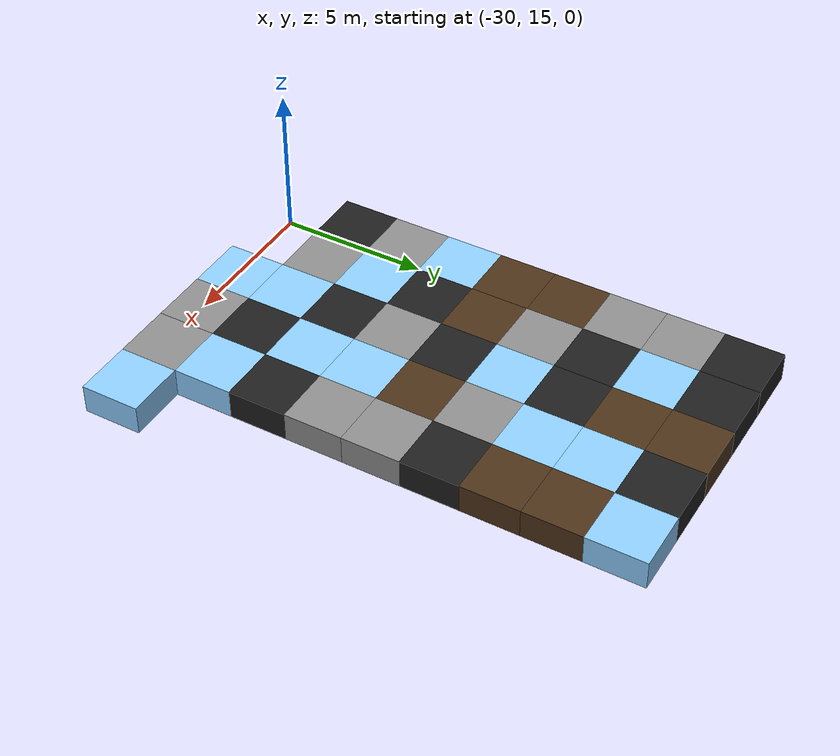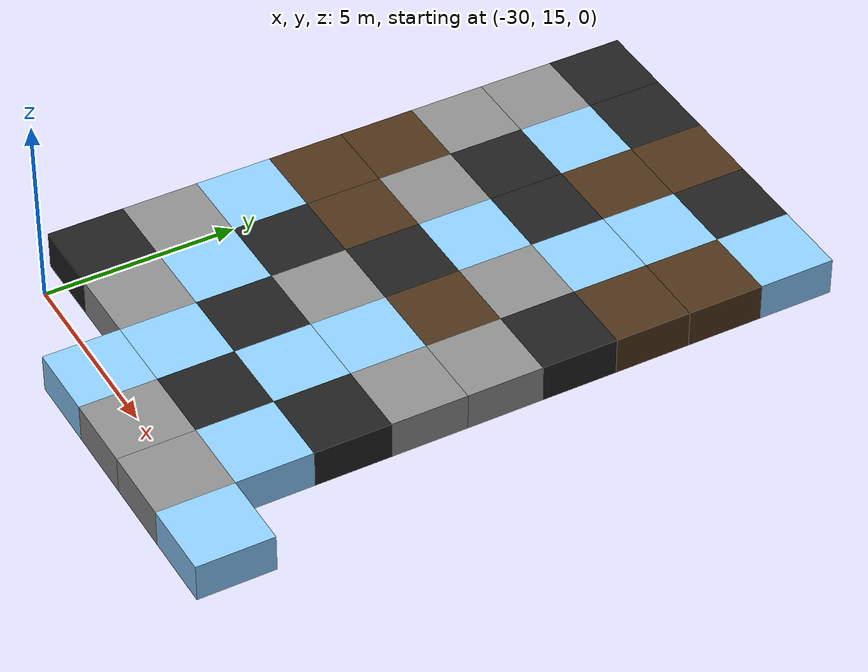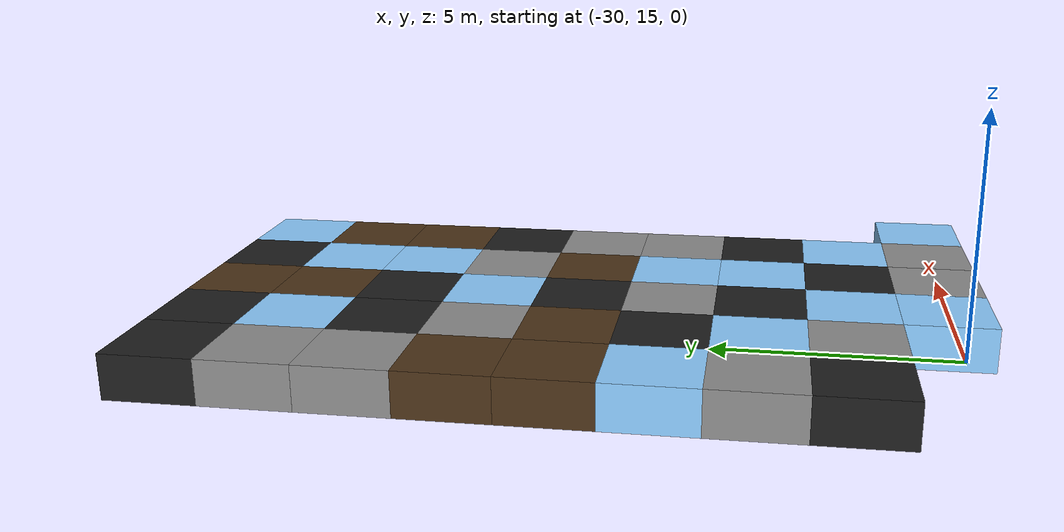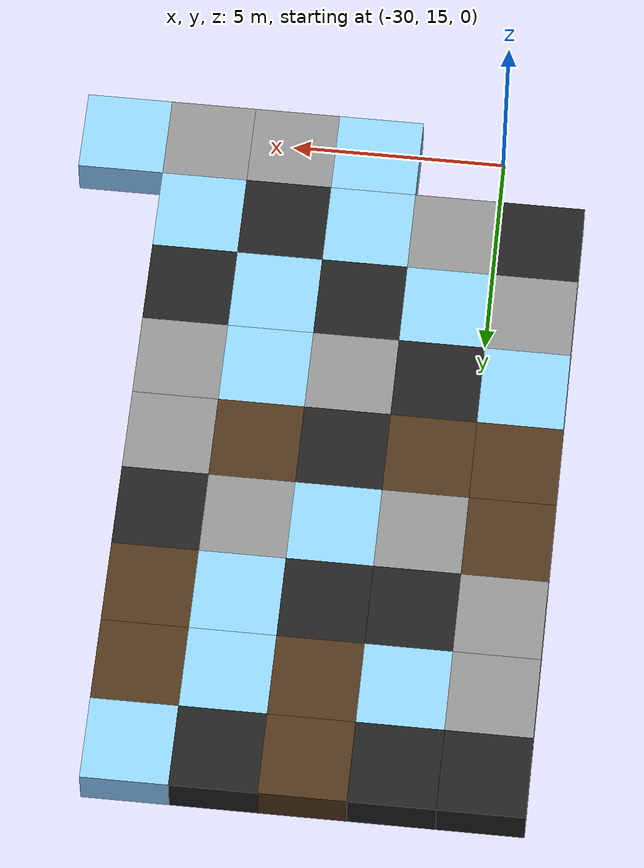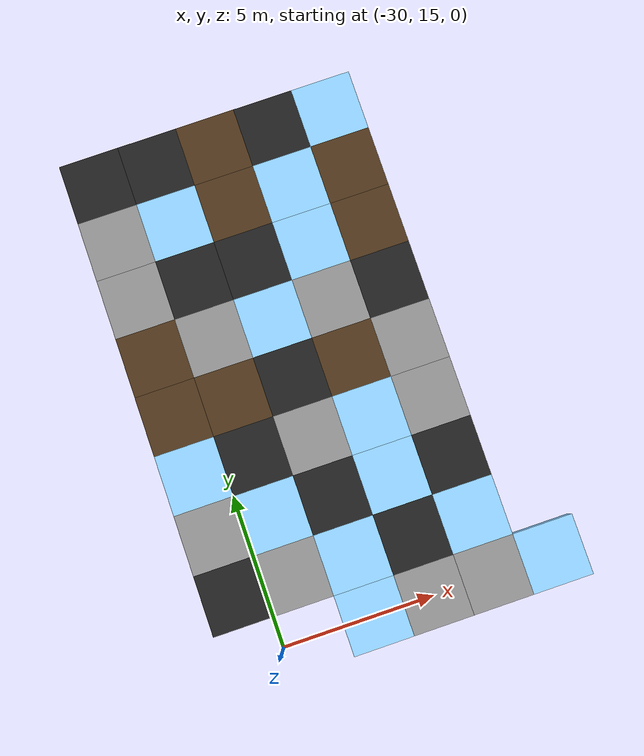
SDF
<sdf version="1.5">
 <world name="squares_example">
  <model name="tile_2_23">
   <static>true</static>
   <pose>-27.000 15.000 -0.500 0 0 0</pose>
   <link name="link">
    <collision name="col">
     <geometry><box><size>2.0 2.0 1.0</size></box></geometry>
     <surface>
      <friction>
       <ode><mu>0.03</mu><mu2>0.02</mu2><fdir1>1 0 0</fdir1><slip1>0.03</slip1><slip2>0.03</slip2></ode>
       <torsional>
        <coefficient>0.005</coefficient>
        <use_patch_radius>false</use_patch_radius>
        <surface_radius>0.12</surface_radius>
        <ode><slip>0.01</slip></ode>
       </torsional>
      </friction>
      <bounce><restitution_coefficient>0.0</restitution_coefficient><threshold>0.1</threshold></bounce>
      <contact>
       <ode><kp>10000000.0</kp><kd>1000.0</kd><max_vel>0.01</max_vel><min_depth>0.0</min_depth></ode>
      </contact>
     </surface>
    </collision>
    <visual name="visual">
     <geometry><box><size>2.0 2.0 1.0</size></box></geometry>
     <material>
      <diffuse>0.55 0.80 1.00 1</diffuse>
      <ambient>0 0 0 0</ambient>
      <specular>0 0 0 1</specular>
      <emissive>0 0 0 1</emissive>
     </material>
    </visual>
   </link>
  </model>
  <model name="tile_3_23">
   <static>true</static>
   <pose>-25.000 15.000 -0.500 0 0 0</pose>
   <link name="link">
    <collision name="col">
     <geometry><box><size>2.0 2.0 1.0</size></box></geometry>
     <surface>
      <friction>
       <ode><mu>0.8</mu><mu2>0.3</mu2><fdir1>1 0 0</fdir1><slip1>0.0</slip1><slip2>0.0</slip2></ode>
       <torsional>
        <coefficient>0.03</coefficient>
        <use_patch_radius>false</use_patch_radius>
        <surface_radius>0.12</surface_radius>
        <ode><slip>0.0</slip></ode>
       </torsional>
      </friction>
      <bounce><restitution_coefficient>0.0</restitution_coefficient><threshold>0.1</threshold></bounce>
      <contact>
       <ode><kp>10000000000.0</kp><kd>10000000.0</kd><max_vel>0.01</max_vel><min_depth>0.0</min_depth></ode>
      </contact>
     </surface>
    </collision>
    <visual name="visual">
     <geometry><box><size>2.0 2.0 1.0</size></box></geometry>
     <material>
      <diffuse>0.55 0.55 0.55 1</diffuse>
      <ambient>0 0 0 0</ambient>
      <specular>0 0 0 1</specular>
      <emissive>0 0 0 1</emissive>
     </material>
    </visual>
   </link>
  </model>
  <model name="tile_4_23">
   <static>true</static>
   <pose>-23.000 15.000 -0.500 0 0 0</pose>
   <link name="link">
    <collision name="col">
     <geometry><box><size>2.0 2.0 1.0</size></box></geometry>
     <surface>
      <friction>
       <ode><mu>0.8</mu><mu2>0.3</mu2><fdir1>1 0 0</fdir1><slip1>0.0</slip1><slip2>0.0</slip2></ode>
       <torsional>
        <coefficient>0.03</coefficient>
        <use_patch_radius>false</use_patch_radius>
        <surface_radius>0.12</surface_radius>
        <ode><slip>0.0</slip></ode>
       </torsional>
      </friction>
      <bounce><restitution_coefficient>0.0</restitution_coefficient><threshold>0.1</threshold></bounce>
      <contact>
       <ode><kp>10000000000.0</kp><kd>10000000.0</kd><max_vel>0.01</max_vel><min_depth>0.0</min_depth></ode>
      </contact>
     </surface>
    </collision>
    <visual name="visual">
     <geometry><box><size>2.0 2.0 1.0</size></box></geometry>
     <material>
      <diffuse>0.55 0.55 0.55 1</diffuse>
      <ambient>0 0 0 0</ambient>
      <specular>0 0 0 1</specular>
      <emissive>0 0 0 1</emissive>
     </material>
    </visual>
   </link>
  </model>
  <model name="tile_5_23">
   <static>true</static>
   <pose>-21.000 15.000 -0.500 0 0 0</pose>
   <link name="link">
    <collision name="col">
     <geometry><box><size>2.0 2.0 1.0</size></box></geometry>
     <surface>
      <friction>
       <ode><mu>0.03</mu><mu2>0.02</mu2><fdir1>1 0 0</fdir1><slip1>0.03</slip1><slip2>0.03</slip2></ode>
       <torsional>
        <coefficient>0.005</coefficient>
        <use_patch_radius>false</use_patch_radius>
        <surface_radius>0.12</surface_radius>
        <ode><slip>0.01</slip></ode>
       </torsional>
      </friction>
      <bounce><restitution_coefficient>0.0</restitution_coefficient><threshold>0.1</threshold></bounce>
      <contact>
       <ode><kp>10000000.0</kp><kd>1000.0</kd><max_vel>0.01</max_vel><min_depth>0.0</min_depth></ode>
      </contact>
     </surface>
    </collision>
    <visual name="visual">
     <geometry><box><size>2.0 2.0 1.0</size></box></geometry>
     <material>
      <diffuse>0.55 0.80 1.00 1</diffuse>
      <ambient>0 0 0 0</ambient>
      <specular>0 0 0 1</specular>
      <emissive>0 0 0 1</emissive>
     </material>
    </visual>
   </link>
  </model>
  <model name="tile_0_24">
   <static>true</static>
   <pose>-31.000 17.000 -0.500 0 0 0</pose>
   <link name="link">
    <collision name="col">
     <geometry><box><size>2.0 2.0 1.0</size></box></geometry>
     <surface>
      <friction>
       <ode><mu>0.4</mu><mu2>0.15</mu2><fdir1>1 0 0</fdir1><slip1>0.0</slip1><slip2>0.0</slip2></ode>
       <torsional>
        <coefficient>0.03</coefficient>
        <use_patch_radius>false</use_patch_radius>
        <surface_radius>0.12</surface_radius>
        <ode><slip>0.0</slip></ode>
       </torsional>
      </friction>
      <bounce><restitution_coefficient>0.0</restitution_coefficient><threshold>0.1</threshold></bounce>
      <contact>
       <ode><kp>1000000000.0</kp><kd>1000000.0</kd><max_vel>0.01</max_vel><min_depth>0.0</min_depth></ode>
      </contact>
     </surface>
    </collision>
    <visual name="visual">
     <geometry><box><size>2.0 2.0 1.0</size></box></geometry>
     <material>
      <diffuse>0.12 0.12 0.12 1</diffuse>
      <ambient>0 0 0 0</ambient>
      <specular>0 0 0 1</specular>
      <emissive>0 0 0 1</emissive>
     </material>
    </visual>
   </link>
  </model>
  <model name="tile_1_24">
   <static>true</static>
   <pose>-29.000 17.000 -0.500 0 0 0</pose>
   <link name="link">
    <collision name="col">
     <geometry><box><size>2.0 2.0 1.0</size></box></geometry>
     <surface>
      <friction>
       <ode><mu>0.8</mu><mu2>0.3</mu2><fdir1>1 0 0</fdir1><slip1>0.0</slip1><slip2>0.0</slip2></ode>
       <torsional>
        <coefficient>0.03</coefficient>
        <use_patch_radius>false</use_patch_radius>
        <surface_radius>0.12</surface_radius>
        <ode><slip>0.0</slip></ode>
       </torsional>
      </friction>
      <bounce><restitution_coefficient>0.0</restitution_coefficient><threshold>0.1</threshold></bounce>
      <contact>
       <ode><kp>10000000000.0</kp><kd>10000000.0</kd><max_vel>0.01</max_vel><min_depth>0.0</min_depth></ode>
      </contact>
     </surface>
    </collision>
    <visual name="visual">
     <geometry><box><size>2.0 2.0 1.0</size></box></geometry>
     <material>
      <diffuse>0.55 0.55 0.55 1</diffuse>
      <ambient>0 0 0 0</ambient>
      <specular>0 0 0 1</specular>
      <emissive>0 0 0 1</emissive>
     </material>
    </visual>
   </link>
  </model>
  <model name="tile_2_24">
   <static>true</static>
   <pose>-27.000 17.000 -0.500 0 0 0</pose>
   <link name="link">
    <collision name="col">
     <geometry><box><size>2.0 2.0 1.0</size></box></geometry>
     <surface>
      <friction>
       <ode><mu>0.03</mu><mu2>0.02</mu2><fdir1>1 0 0</fdir1><slip1>0.03</slip1><slip2>0.03</slip2></ode>
       <torsional>
        <coefficient>0.005</coefficient>
        <use_patch_radius>false</use_patch_radius>
        <surface_radius>0.12</surface_radius>
        <ode><slip>0.01</slip></ode>
       </torsional>
      </friction>
      <bounce><restitution_coefficient>0.0</restitution_coefficient><threshold>0.1</threshold></bounce>
      <contact>
       <ode><kp>10000000.0</kp><kd>1000.0</kd><max_vel>0.01</max_vel><min_depth>0.0</min_depth></ode>
      </contact>
     </surface>
    </collision>
    <visual name="visual">
     <geometry><box><size>2.0 2.0 1.0</size></box></geometry>
     <material>
      <diffuse>0.55 0.80 1.00 1</diffuse>
      <ambient>0 0 0 0</ambient>
      <specular>0 0 0 1</specular>
      <emissive>0 0 0 1</emissive>
     </material>
    </visual>
   </link>
  </model>
  <model name="tile_3_24">
   <static>true</static>
   <pose>-25.000 17.000 -0.500 0 0 0</pose>
   <link name="link">
    <collision name="col">
     <geometry><box><size>2.0 2.0 1.0</size></box></geometry>
     <surface>
      <friction>
       <ode><mu>0.4</mu><mu2>0.15</mu2><fdir1>1 0 0</fdir1><slip1>0.0</slip1><slip2>0.0</slip2></ode>
       <torsional>
        <coefficient>0.03</coefficient>
        <use_patch_radius>false</use_patch_radius>
        <surface_radius>0.12</surface_radius>
        <ode><slip>0.0</slip></ode>
       </torsional>
      </friction>
      <bounce><restitution_coefficient>0.0</restitution_coefficient><threshold>0.1</threshold></bounce>
      <contact>
       <ode><kp>1000000000.0</kp><kd>1000000.0</kd><max_vel>0.01</max_vel><min_depth>0.0</min_depth></ode>
      </contact>
     </surface>
    </collision>
    <visual name="visual">
     <geometry><box><size>2.0 2.0 1.0</size></box></geometry>
     <material>
      <diffuse>0.12 0.12 0.12 1</diffuse>
      <ambient>0 0 0 0</ambient>
      <specular>0 0 0 1</specular>
      <emissive>0 0 0 1</emissive>
     </material>
    </visual>
   </link>
  </model>
  <model name="tile_4_24">
   <static>true</static>
   <pose>-23.000 17.000 -0.500 0 0 0</pose>
   <link name="link">
    <collision name="col">
     <geometry><box><size>2.0 2.0 1.0</size></box></geometry>
     <surface>
      <friction>
       <ode><mu>0.03</mu><mu2>0.02</mu2><fdir1>1 0 0</fdir1><slip1>0.03</slip1><slip2>0.03</slip2></ode>
       <torsional>
        <coefficient>0.005</coefficient>
        <use_patch_radius>false</use_patch_radius>
        <surface_radius>0.12</surface_radius>
        <ode><slip>0.01</slip></ode>
       </torsional>
      </friction>
      <bounce><restitution_coefficient>0.0</restitution_coefficient><threshold>0.1</threshold></bounce>
      <contact>
       <ode><kp>10000000.0</kp><kd>1000.0</kd><max_vel>0.01</max_vel><min_depth>0.0</min_depth></ode>
      </contact>
     </surface>
    </collision>
    <visual name="visual">
     <geometry><box><size>2.0 2.0 1.0</size></box></geometry>
     <material>
      <diffuse>0.55 0.80 1.00 1</diffuse>
      <ambient>0 0 0 0</ambient>
      <specular>0 0 0 1</specular>
      <emissive>0 0 0 1</emissive>
     </material>
    </visual>
   </link>
  </model>
  <model name="tile_0_25">
   <static>true</static>
   <pose>-31.000 19.000 -0.500 0 0 0</pose>
   <link name="link">
    <collision name="col">
     <geometry><box><size>2.0 2.0 1.0</size></box></geometry>
     <surface>
      <friction>
       <ode><mu>0.8</mu><mu2>0.3</mu2><fdir1>1 0 0</fdir1><slip1>0.0</slip1><slip2>0.0</slip2></ode>
       <torsional>
        <coefficient>0.03</coefficient>
        <use_patch_radius>false</use_patch_radius>
        <surface_radius>0.12</surface_radius>
        <ode><slip>0.0</slip></ode>
       </torsional>
      </friction>
      <bounce><restitution_coefficient>0.0</restitution_coefficient><threshold>0.1</threshold></bounce>
      <contact>
       <ode><kp>10000000000.0</kp><kd>10000000.0</kd><max_vel>0.01</max_vel><min_depth>0.0</min_depth></ode>
      </contact>
     </surface>
    </collision>
    <visual name="visual">
     <geometry><box><size>2.0 2.0 1.0</size></box></geometry>
     <material>
      <diffuse>0.55 0.55 0.55 1</diffuse>
      <ambient>0 0 0 0</ambient>
      <specular>0 0 0 1</specular>
      <emissive>0 0 0 1</emissive>
     </material>
    </visual>
   </link>
  </model>
  <model name="tile_1_25">
   <static>true</static>
   <pose>-29.000 19.000 -0.500 0 0 0</pose>
   <link name="link">
    <collision name="col">
     <geometry><box><size>2.0 2.0 1.0</size></box></geometry>
     <surface>
      <friction>
       <ode><mu>0.03</mu><mu2>0.02</mu2><fdir1>1 0 0</fdir1><slip1>0.03</slip1><slip2>0.03</slip2></ode>
       <torsional>
        <coefficient>0.005</coefficient>
        <use_patch_radius>false</use_patch_radius>
        <surface_radius>0.12</surface_radius>
        <ode><slip>0.01</slip></ode>
       </torsional>
      </friction>
      <bounce><restitution_coefficient>0.0</restitution_coefficient><threshold>0.1</threshold></bounce>
      <contact>
       <ode><kp>10000000.0</kp><kd>1000.0</kd><max_vel>0.01</max_vel><min_depth>0.0</min_depth></ode>
      </contact>
     </surface>
    </collision>
    <visual name="visual">
     <geometry><box><size>2.0 2.0 1.0</size></box></geometry>
     <material>
      <diffuse>0.55 0.80 1.00 1</diffuse>
      <ambient>0 0 0 0</ambient>
      <specular>0 0 0 1</specular>
      <emissive>0 0 0 1</emissive>
     </material>
    </visual>
   </link>
  </model>
  <model name="tile_2_25">
   <static>true</static>
   <pose>-27.000 19.000 -0.500 0 0 0</pose>
   <link name="link">
    <collision name="col">
     <geometry><box><size>2.0 2.0 1.0</size></box></geometry>
     <surface>
      <friction>
       <ode><mu>0.4</mu><mu2>0.15</mu2><fdir1>1 0 0</fdir1><slip1>0.0</slip1><slip2>0.0</slip2></ode>
       <torsional>
        <coefficient>0.03</coefficient>
        <use_patch_radius>false</use_patch_radius>
        <surface_radius>0.12</surface_radius>
        <ode><slip>0.0</slip></ode>
       </torsional>
      </friction>
      <bounce><restitution_coefficient>0.0</restitution_coefficient><threshold>0.1</threshold></bounce>
      <contact>
       <ode><kp>1000000000.0</kp><kd>1000000.0</kd><max_vel>0.01</max_vel><min_depth>0.0</min_depth></ode>
      </contact>
     </surface>
    </collision>
    <visual name="visual">
     <geometry><box><size>2.0 2.0 1.0</size></box></geometry>
     <material>
      <diffuse>0.12 0.12 0.12 1</diffuse>
      <ambient>0 0 0 0</ambient>
      <specular>0 0 0 1</specular>
      <emissive>0 0 0 1</emissive>
     </material>
    </visual>
   </link>
  </model>
  <model name="tile_3_25">
   <static>true</static>
   <pose>-25.000 19.000 -0.500 0 0 0</pose>
   <link name="link">
    <collision name="col">
     <geometry><box><size>2.0 2.0 1.0</size></box></geometry>
     <surface>
      <friction>
       <ode><mu>0.03</mu><mu2>0.02</mu2><fdir1>1 0 0</fdir1><slip1>0.03</slip1><slip2>0.03</slip2></ode>
       <torsional>
        <coefficient>0.005</coefficient>
        <use_patch_radius>false</use_patch_radius>
        <surface_radius>0.12</surface_radius>
        <ode><slip>0.01</slip></ode>
       </torsional>
      </friction>
      <bounce><restitution_coefficient>0.0</restitution_coefficient><threshold>0.1</threshold></bounce>
      <contact>
       <ode><kp>10000000.0</kp><kd>1000.0</kd><max_vel>0.01</max_vel><min_depth>0.0</min_depth></ode>
      </contact>
     </surface>
    </collision>
    <visual name="visual">
     <geometry><box><size>2.0 2.0 1.0</size></box></geometry>
     <material>
      <diffuse>0.55 0.80 1.00 1</diffuse>
      <ambient>0 0 0 0</ambient>
      <specular>0 0 0 1</specular>
      <emissive>0 0 0 1</emissive>
     </material>
    </visual>
   </link>
  </model>
  <model name="tile_4_25">
   <static>true</static>
   <pose>-23.000 19.000 -0.500 0 0 0</pose>
   <link name="link">
    <collision name="col">
     <geometry><box><size>2.0 2.0 1.0</size></box></geometry>
     <surface>
      <friction>
       <ode><mu>0.4</mu><mu2>0.15</mu2><fdir1>1 0 0</fdir1><slip1>0.0</slip1><slip2>0.0</slip2></ode>
       <torsional>
        <coefficient>0.03</coefficient>
        <use_patch_radius>false</use_patch_radius>
        <surface_radius>0.12</surface_radius>
        <ode><slip>0.0</slip></ode>
       </torsional>
      </friction>
      <bounce><restitution_coefficient>0.0</restitution_coefficient><threshold>0.1</threshold></bounce>
      <contact>
       <ode><kp>1000000000.0</kp><kd>1000000.0</kd><max_vel>0.01</max_vel><min_depth>0.0</min_depth></ode>
      </contact>
     </surface>
    </collision>
    <visual name="visual">
     <geometry><box><size>2.0 2.0 1.0</size></box></geometry>
     <material>
      <diffuse>0.12 0.12 0.12 1</diffuse>
      <ambient>0 0 0 0</ambient>
      <specular>0 0 0 1</specular>
      <emissive>0 0 0 1</emissive>
     </material>
    </visual>
   </link>
  </model>
  <model name="tile_0_26">
   <static>true</static>
   <pose>-31.000 21.000 -0.500 0 0 0</pose>
   <link name="link">
    <collision name="col">
     <geometry><box><size>2.0 2.0 1.0</size></box></geometry>
     <surface>
      <friction>
       <ode><mu>0.03</mu><mu2>0.02</mu2><fdir1>1 0 0</fdir1><slip1>0.03</slip1><slip2>0.03</slip2></ode>
       <torsional>
        <coefficient>0.005</coefficient>
        <use_patch_radius>false</use_patch_radius>
        <surface_radius>0.12</surface_radius>
        <ode><slip>0.01</slip></ode>
       </torsional>
      </friction>
      <bounce><restitution_coefficient>0.0</restitution_coefficient><threshold>0.1</threshold></bounce>
      <contact>
       <ode><kp>10000000.0</kp><kd>1000.0</kd><max_vel>0.01</max_vel><min_depth>0.0</min_depth></ode>
      </contact>
     </surface>
    </collision>
    <visual name="visual">
     <geometry><box><size>2.0 2.0 1.0</size></box></geometry>
     <material>
      <diffuse>0.55 0.80 1.00 1</diffuse>
      <ambient>0 0 0 0</ambient>
      <specular>0 0 0 1</specular>
      <emissive>0 0 0 1</emissive>
     </material>
    </visual>
   </link>
  </model>
  <model name="tile_1_26">
   <static>true</static>
   <pose>-29.000 21.000 -0.500 0 0 0</pose>
   <link name="link">
    <collision name="col">
     <geometry><box><size>2.0 2.0 1.0</size></box></geometry>
     <surface>
      <friction>
       <ode><mu>0.4</mu><mu2>0.15</mu2><fdir1>1 0 0</fdir1><slip1>0.0</slip1><slip2>0.0</slip2></ode>
       <torsional>
        <coefficient>0.03</coefficient>
        <use_patch_radius>false</use_patch_radius>
        <surface_radius>0.12</surface_radius>
        <ode><slip>0.0</slip></ode>
       </torsional>
      </friction>
      <bounce><restitution_coefficient>0.0</restitution_coefficient><threshold>0.1</threshold></bounce>
      <contact>
       <ode><kp>1000000000.0</kp><kd>1000000.0</kd><max_vel>0.01</max_vel><min_depth>0.0</min_depth></ode>
      </contact>
     </surface>
    </collision>
    <visual name="visual">
     <geometry><box><size>2.0 2.0 1.0</size></box></geometry>
     <material>
      <diffuse>0.12 0.12 0.12 1</diffuse>
      <ambient>0 0 0 0</ambient>
      <specular>0 0 0 1</specular>
      <emissive>0 0 0 1</emissive>
     </material>
    </visual>
   </link>
  </model>
  <model name="tile_2_26">
   <static>true</static>
   <pose>-27.000 21.000 -0.500 0 0 0</pose>
   <link name="link">
    <collision name="col">
     <geometry><box><size>2.0 2.0 1.0</size></box></geometry>
     <surface>
      <friction>
       <ode><mu>0.8</mu><mu2>0.3</mu2><fdir1>1 0 0</fdir1><slip1>0.0</slip1><slip2>0.0</slip2></ode>
       <torsional>
        <coefficient>0.03</coefficient>
        <use_patch_radius>false</use_patch_radius>
        <surface_radius>0.12</surface_radius>
        <ode><slip>0.0</slip></ode>
       </torsional>
      </friction>
      <bounce><restitution_coefficient>0.0</restitution_coefficient><threshold>0.1</threshold></bounce>
      <contact>
       <ode><kp>10000000000.0</kp><kd>10000000.0</kd><max_vel>0.01</max_vel><min_depth>0.0</min_depth></ode>
      </contact>
     </surface>
    </collision>
    <visual name="visual">
     <geometry><box><size>2.0 2.0 1.0</size></box></geometry>
     <material>
      <diffuse>0.55 0.55 0.55 1</diffuse>
      <ambient>0 0 0 0</ambient>
      <specular>0 0 0 1</specular>
      <emissive>0 0 0 1</emissive>
     </material>
    </visual>
   </link>
  </model>
  <model name="tile_3_26">
   <static>true</static>
   <pose>-25.000 21.000 -0.500 0 0 0</pose>
   <link name="link">
    <collision name="col">
     <geometry><box><size>2.0 2.0 1.0</size></box></geometry>
     <surface>
      <friction>
       <ode><mu>0.03</mu><mu2>0.02</mu2><fdir1>1 0 0</fdir1><slip1>0.03</slip1><slip2>0.03</slip2></ode>
       <torsional>
        <coefficient>0.005</coefficient>
        <use_patch_radius>false</use_patch_radius>
        <surface_radius>0.12</surface_radius>
        <ode><slip>0.01</slip></ode>
       </torsional>
      </friction>
      <bounce><restitution_coefficient>0.0</restitution_coefficient><threshold>0.1</threshold></bounce>
      <contact>
       <ode><kp>10000000.0</kp><kd>1000.0</kd><max_vel>0.01</max_vel><min_depth>0.0</min_depth></ode>
      </contact>
     </surface>
    </collision>
    <visual name="visual">
     <geometry><box><size>2.0 2.0 1.0</size></box></geometry>
     <material>
      <diffuse>0.55 0.80 1.00 1</diffuse>
      <ambient>0 0 0 0</ambient>
      <specular>0 0 0 1</specular>
      <emissive>0 0 0 1</emissive>
     </material>
    </visual>
   </link>
  </model>
  <model name="tile_4_26">
   <static>true</static>
   <pose>-23.000 21.000 -0.500 0 0 0</pose>
   <link name="link">
    <collision name="col">
     <geometry><box><size>2.0 2.0 1.0</size></box></geometry>
     <surface>
      <friction>
       <ode><mu>0.8</mu><mu2>0.3</mu2><fdir1>1 0 0</fdir1><slip1>0.0</slip1><slip2>0.0</slip2></ode>
       <torsional>
        <coefficient>0.03</coefficient>
        <use_patch_radius>false</use_patch_radius>
        <surface_radius>0.12</surface_radius>
        <ode><slip>0.0</slip></ode>
       </torsional>
      </friction>
      <bounce><restitution_coefficient>0.0</restitution_coefficient><threshold>0.1</threshold></bounce>
      <contact>
       <ode><kp>10000000000.0</kp><kd>10000000.0</kd><max_vel>0.01</max_vel><min_depth>0.0</min_depth></ode>
      </contact>
     </surface>
    </collision>
    <visual name="visual">
     <geometry><box><size>2.0 2.0 1.0</size></box></geometry>
     <material>
      <diffuse>0.55 0.55 0.55 1</diffuse>
      <ambient>0 0 0 0</ambient>
      <specular>0 0 0 1</specular>
      <emissive>0 0 0 1</emissive>
     </material>
    </visual>
   </link>
  </model>
  <model name="tile_0_27">
   <static>true</static>
   <pose>-31.000 23.000 -0.500 0 0 0</pose>
   <link name="link">
    <collision name="col">
     <geometry><box><size>2.0 2.0 1.0</size></box></geometry>
     <surface>
      <friction>
       <ode><mu>0.6</mu><mu2>0.4</mu2><fdir1>1 0 0</fdir1><slip1>0.08</slip1><slip2>0.08</slip2></ode>
       <torsional>
        <coefficient>0.03</coefficient>
        <use_patch_radius>false</use_patch_radius>
        <surface_radius>0.12</surface_radius>
        <ode><slip>0.0</slip></ode>
       </torsional>
      </friction>
      <bounce><restitution_coefficient>0.0</restitution_coefficient><threshold>0.1</threshold></bounce>
      <contact>
       <ode><kp>1000000.0</kp><kd>10000.0</kd><max_vel>0.01</max_vel><min_depth>0.0</min_depth></ode>
      </contact>
     </surface>
    </collision>
    <visual name="visual">
     <geometry><box><size>2.0 2.0 1.0</size></box></geometry>
     <material>
      <diffuse>0.30 0.20 0.10 1</diffuse>
      <ambient>0 0 0 0</ambient>
      <specular>0 0 0 1</specular>
      <emissive>0 0 0 1</emissive>
     </material>
    </visual>
   </link>
  </model>
  <model name="tile_1_27">
   <static>true</static>
   <pose>-29.000 23.000 -0.500 0 0 0</pose>
   <link name="link">
    <collision name="col">
     <geometry><box><size>2.0 2.0 1.0</size></box></geometry>
     <surface>
      <friction>
       <ode><mu>0.6</mu><mu2>0.4</mu2><fdir1>1 0 0</fdir1><slip1>0.08</slip1><slip2>0.08</slip2></ode>
       <torsional>
        <coefficient>0.03</coefficient>
        <use_patch_radius>false</use_patch_radius>
        <surface_radius>0.12</surface_radius>
        <ode><slip>0.0</slip></ode>
       </torsional>
      </friction>
      <bounce><restitution_coefficient>0.0</restitution_coefficient><threshold>0.1</threshold></bounce>
      <contact>
       <ode><kp>1000000.0</kp><kd>10000.0</kd><max_vel>0.01</max_vel><min_depth>0.0</min_depth></ode>
      </contact>
     </surface>
    </collision>
    <visual name="visual">
     <geometry><box><size>2.0 2.0 1.0</size></box></geometry>
     <material>
      <diffuse>0.30 0.20 0.10 1</diffuse>
      <ambient>0 0 0 0</ambient>
      <specular>0 0 0 1</specular>
      <emissive>0 0 0 1</emissive>
     </material>
    </visual>
   </link>
  </model>
  <model name="tile_2_27">
   <static>true</static>
   <pose>-27.000 23.000 -0.500 0 0 0</pose>
   <link name="link">
    <collision name="col">
     <geometry><box><size>2.0 2.0 1.0</size></box></geometry>
     <surface>
      <friction>
       <ode><mu>0.4</mu><mu2>0.15</mu2><fdir1>1 0 0</fdir1><slip1>0.0</slip1><slip2>0.0</slip2></ode>
       <torsional>
        <coefficient>0.03</coefficient>
        <use_patch_radius>false</use_patch_radius>
        <surface_radius>0.12</surface_radius>
        <ode><slip>0.0</slip></ode>
       </torsional>
      </friction>
      <bounce><restitution_coefficient>0.0</restitution_coefficient><threshold>0.1</threshold></bounce>
      <contact>
       <ode><kp>1000000000.0</kp><kd>1000000.0</kd><max_vel>0.01</max_vel><min_depth>0.0</min_depth></ode>
      </contact>
     </surface>
    </collision>
    <visual name="visual">
     <geometry><box><size>2.0 2.0 1.0</size></box></geometry>
     <material>
      <diffuse>0.12 0.12 0.12 1</diffuse>
      <ambient>0 0 0 0</ambient>
      <specular>0 0 0 1</specular>
      <emissive>0 0 0 1</emissive>
     </material>
    </visual>
   </link>
  </model>
  <model name="tile_3_27">
   <static>true</static>
   <pose>-25.000 23.000 -0.500 0 0 0</pose>
   <link name="link">
    <collision name="col">
     <geometry><box><size>2.0 2.0 1.0</size></box></geometry>
     <surface>
      <friction>
       <ode><mu>0.6</mu><mu2>0.4</mu2><fdir1>1 0 0</fdir1><slip1>0.08</slip1><slip2>0.08</slip2></ode>
       <torsional>
        <coefficient>0.03</coefficient>
        <use_patch_radius>false</use_patch_radius>
        <surface_radius>0.12</surface_radius>
        <ode><slip>0.0</slip></ode>
       </torsional>
      </friction>
      <bounce><restitution_coefficient>0.0</restitution_coefficient><threshold>0.1</threshold></bounce>
      <contact>
       <ode><kp>1000000.0</kp><kd>10000.0</kd><max_vel>0.01</max_vel><min_depth>0.0</min_depth></ode>
      </contact>
     </surface>
    </collision>
    <visual name="visual">
     <geometry><box><size>2.0 2.0 1.0</size></box></geometry>
     <material>
      <diffuse>0.30 0.20 0.10 1</diffuse>
      <ambient>0 0 0 0</ambient>
      <specular>0 0 0 1</specular>
      <emissive>0 0 0 1</emissive>
     </material>
    </visual>
   </link>
  </model>
  <model name="tile_4_27">
   <static>true</static>
   <pose>-23.000 23.000 -0.500 0 0 0</pose>
   <link name="link">
    <collision name="col">
     <geometry><box><size>2.0 2.0 1.0</size></box></geometry>
     <surface>
      <friction>
       <ode><mu>0.8</mu><mu2>0.3</mu2><fdir1>1 0 0</fdir1><slip1>0.0</slip1><slip2>0.0</slip2></ode>
       <torsional>
        <coefficient>0.03</coefficient>
        <use_patch_radius>false</use_patch_radius>
        <surface_radius>0.12</surface_radius>
        <ode><slip>0.0</slip></ode>
       </torsional>
      </friction>
      <bounce><restitution_coefficient>0.0</restitution_coefficient><threshold>0.1</threshold></bounce>
      <contact>
       <ode><kp>10000000000.0</kp><kd>10000000.0</kd><max_vel>0.01</max_vel><min_depth>0.0</min_depth></ode>
      </contact>
     </surface>
    </collision>
    <visual name="visual">
     <geometry><box><size>2.0 2.0 1.0</size></box></geometry>
     <material>
      <diffuse>0.55 0.55 0.55 1</diffuse>
      <ambient>0 0 0 0</ambient>
      <specular>0 0 0 1</specular>
      <emissive>0 0 0 1</emissive>
     </material>
    </visual>
   </link>
  </model>
  <model name="tile_0_28">
   <static>true</static>
   <pose>-31.000 25.000 -0.500 0 0 0</pose>
   <link name="link">
    <collision name="col">
     <geometry><box><size>2.0 2.0 1.0</size></box></geometry>
     <surface>
      <friction>
       <ode><mu>0.6</mu><mu2>0.4</mu2><fdir1>1 0 0</fdir1><slip1>0.08</slip1><slip2>0.08</slip2></ode>
       <torsional>
        <coefficient>0.03</coefficient>
        <use_patch_radius>false</use_patch_radius>
        <surface_radius>0.12</surface_radius>
        <ode><slip>0.0</slip></ode>
       </torsional>
      </friction>
      <bounce><restitution_coefficient>0.0</restitution_coefficient><threshold>0.1</threshold></bounce>
      <contact>
       <ode><kp>1000000.0</kp><kd>10000.0</kd><max_vel>0.01</max_vel><min_depth>0.0</min_depth></ode>
      </contact>
     </surface>
    </collision>
    <visual name="visual">
     <geometry><box><size>2.0 2.0 1.0</size></box></geometry>
     <material>
      <diffuse>0.30 0.20 0.10 1</diffuse>
      <ambient>0 0 0 0</ambient>
      <specular>0 0 0 1</specular>
      <emissive>0 0 0 1</emissive>
     </material>
    </visual>
   </link>
  </model>
  <model name="tile_1_28">
   <static>true</static>
   <pose>-29.000 25.000 -0.500 0 0 0</pose>
   <link name="link">
    <collision name="col">
     <geometry><box><size>2.0 2.0 1.0</size></box></geometry>
     <surface>
      <friction>
       <ode><mu>0.8</mu><mu2>0.3</mu2><fdir1>1 0 0</fdir1><slip1>0.0</slip1><slip2>0.0</slip2></ode>
       <torsional>
        <coefficient>0.03</coefficient>
        <use_patch_radius>false</use_patch_radius>
        <surface_radius>0.12</surface_radius>
        <ode><slip>0.0</slip></ode>
       </torsional>
      </friction>
      <bounce><restitution_coefficient>0.0</restitution_coefficient><threshold>0.1</threshold></bounce>
      <contact>
       <ode><kp>10000000000.0</kp><kd>10000000.0</kd><max_vel>0.01</max_vel><min_depth>0.0</min_depth></ode>
      </contact>
     </surface>
    </collision>
    <visual name="visual">
     <geometry><box><size>2.0 2.0 1.0</size></box></geometry>
     <material>
      <diffuse>0.55 0.55 0.55 1</diffuse>
      <ambient>0 0 0 0</ambient>
      <specular>0 0 0 1</specular>
      <emissive>0 0 0 1</emissive>
     </material>
    </visual>
   </link>
  </model>
  <model name="tile_2_28">
   <static>true</static>
   <pose>-27.000 25.000 -0.500 0 0 0</pose>
   <link name="link">
    <collision name="col">
     <geometry><box><size>2.0 2.0 1.0</size></box></geometry>
     <surface>
      <friction>
       <ode><mu>0.03</mu><mu2>0.02</mu2><fdir1>1 0 0</fdir1><slip1>0.03</slip1><slip2>0.03</slip2></ode>
       <torsional>
        <coefficient>0.005</coefficient>
        <use_patch_radius>false</use_patch_radius>
        <surface_radius>0.12</surface_radius>
        <ode><slip>0.01</slip></ode>
       </torsional>
      </friction>
      <bounce><restitution_coefficient>0.0</restitution_coefficient><threshold>0.1</threshold></bounce>
      <contact>
       <ode><kp>10000000.0</kp><kd>1000.0</kd><max_vel>0.01</max_vel><min_depth>0.0</min_depth></ode>
      </contact>
     </surface>
    </collision>
    <visual name="visual">
     <geometry><box><size>2.0 2.0 1.0</size></box></geometry>
     <material>
      <diffuse>0.55 0.80 1.00 1</diffuse>
      <ambient>0 0 0 0</ambient>
      <specular>0 0 0 1</specular>
      <emissive>0 0 0 1</emissive>
     </material>
    </visual>
   </link>
  </model>
  <model name="tile_3_28">
   <static>true</static>
   <pose>-25.000 25.000 -0.500 0 0 0</pose>
   <link name="link">
    <collision name="col">
     <geometry><box><size>2.0 2.0 1.0</size></box></geometry>
     <surface>
      <friction>
       <ode><mu>0.8</mu><mu2>0.3</mu2><fdir1>1 0 0</fdir1><slip1>0.0</slip1><slip2>0.0</slip2></ode>
       <torsional>
        <coefficient>0.03</coefficient>
        <use_patch_radius>false</use_patch_radius>
        <surface_radius>0.12</surface_radius>
        <ode><slip>0.0</slip></ode>
       </torsional>
      </friction>
      <bounce><restitution_coefficient>0.0</restitution_coefficient><threshold>0.1</threshold></bounce>
      <contact>
       <ode><kp>10000000000.0</kp><kd>10000000.0</kd><max_vel>0.01</max_vel><min_depth>0.0</min_depth></ode>
      </contact>
     </surface>
    </collision>
    <visual name="visual">
     <geometry><box><size>2.0 2.0 1.0</size></box></geometry>
     <material>
      <diffuse>0.55 0.55 0.55 1</diffuse>
      <ambient>0 0 0 0</ambient>
      <specular>0 0 0 1</specular>
      <emissive>0 0 0 1</emissive>
     </material>
    </visual>
   </link>
  </model>
  <model name="tile_4_28">
   <static>true</static>
   <pose>-23.000 25.000 -0.500 0 0 0</pose>
   <link name="link">
    <collision name="col">
     <geometry><box><size>2.0 2.0 1.0</size></box></geometry>
     <surface>
      <friction>
       <ode><mu>0.4</mu><mu2>0.15</mu2><fdir1>1 0 0</fdir1><slip1>0.0</slip1><slip2>0.0</slip2></ode>
       <torsional>
        <coefficient>0.03</coefficient>
        <use_patch_radius>false</use_patch_radius>
        <surface_radius>0.12</surface_radius>
        <ode><slip>0.0</slip></ode>
       </torsional>
      </friction>
      <bounce><restitution_coefficient>0.0</restitution_coefficient><threshold>0.1</threshold></bounce>
      <contact>
       <ode><kp>1000000000.0</kp><kd>1000000.0</kd><max_vel>0.01</max_vel><min_depth>0.0</min_depth></ode>
      </contact>
     </surface>
    </collision>
    <visual name="visual">
     <geometry><box><size>2.0 2.0 1.0</size></box></geometry>
     <material>
      <diffuse>0.12 0.12 0.12 1</diffuse>
      <ambient>0 0 0 0</ambient>
      <specular>0 0 0 1</specular>
      <emissive>0 0 0 1</emissive>
     </material>
    </visual>
   </link>
  </model>
  <model name="tile_0_29">
   <static>true</static>
   <pose>-31.000 27.000 -0.500 0 0 0</pose>
   <link name="link">
    <collision name="col">
     <geometry><box><size>2.0 2.0 1.0</size></box></geometry>
     <surface>
      <friction>
       <ode><mu>0.8</mu><mu2>0.3</mu2><fdir1>1 0 0</fdir1><slip1>0.0</slip1><slip2>0.0</slip2></ode>
       <torsional>
        <coefficient>0.03</coefficient>
        <use_patch_radius>false</use_patch_radius>
        <surface_radius>0.12</surface_radius>
        <ode><slip>0.0</slip></ode>
       </torsional>
      </friction>
      <bounce><restitution_coefficient>0.0</restitution_coefficient><threshold>0.1</threshold></bounce>
      <contact>
       <ode><kp>10000000000.0</kp><kd>10000000.0</kd><max_vel>0.01</max_vel><min_depth>0.0</min_depth></ode>
      </contact>
     </surface>
    </collision>
    <visual name="visual">
     <geometry><box><size>2.0 2.0 1.0</size></box></geometry>
     <material>
      <diffuse>0.55 0.55 0.55 1</diffuse>
      <ambient>0 0 0 0</ambient>
      <specular>0 0 0 1</specular>
      <emissive>0 0 0 1</emissive>
     </material>
    </visual>
   </link>
  </model>
  <model name="tile_1_29">
   <static>true</static>
   <pose>-29.000 27.000 -0.500 0 0 0</pose>
   <link name="link">
    <collision name="col">
     <geometry><box><size>2.0 2.0 1.0</size></box></geometry>
     <surface>
      <friction>
       <ode><mu>0.4</mu><mu2>0.15</mu2><fdir1>1 0 0</fdir1><slip1>0.0</slip1><slip2>0.0</slip2></ode>
       <torsional>
        <coefficient>0.03</coefficient>
        <use_patch_radius>false</use_patch_radius>
        <surface_radius>0.12</surface_radius>
        <ode><slip>0.0</slip></ode>
       </torsional>
      </friction>
      <bounce><restitution_coefficient>0.0</restitution_coefficient><threshold>0.1</threshold></bounce>
      <contact>
       <ode><kp>1000000000.0</kp><kd>1000000.0</kd><max_vel>0.01</max_vel><min_depth>0.0</min_depth></ode>
      </contact>
     </surface>
    </collision>
    <visual name="visual">
     <geometry><box><size>2.0 2.0 1.0</size></box></geometry>
     <material>
      <diffuse>0.12 0.12 0.12 1</diffuse>
      <ambient>0 0 0 0</ambient>
      <specular>0 0 0 1</specular>
      <emissive>0 0 0 1</emissive>
     </material>
    </visual>
   </link>
  </model>
  <model name="tile_2_29">
   <static>true</static>
   <pose>-27.000 27.000 -0.500 0 0 0</pose>
   <link name="link">
    <collision name="col">
     <geometry><box><size>2.0 2.0 1.0</size></box></geometry>
     <surface>
      <friction>
       <ode><mu>0.4</mu><mu2>0.15</mu2><fdir1>1 0 0</fdir1><slip1>0.0</slip1><slip2>0.0</slip2></ode>
       <torsional>
        <coefficient>0.03</coefficient>
        <use_patch_radius>false</use_patch_radius>
        <surface_radius>0.12</surface_radius>
        <ode><slip>0.0</slip></ode>
       </torsional>
      </friction>
      <bounce><restitution_coefficient>0.0</restitution_coefficient><threshold>0.1</threshold></bounce>
      <contact>
       <ode><kp>1000000000.0</kp><kd>1000000.0</kd><max_vel>0.01</max_vel><min_depth>0.0</min_depth></ode>
      </contact>
     </surface>
    </collision>
    <visual name="visual">
     <geometry><box><size>2.0 2.0 1.0</size></box></geometry>
     <material>
      <diffuse>0.12 0.12 0.12 1</diffuse>
      <ambient>0 0 0 0</ambient>
      <specular>0 0 0 1</specular>
      <emissive>0 0 0 1</emissive>
     </material>
    </visual>
   </link>
  </model>
  <model name="tile_3_29">
   <static>true</static>
   <pose>-25.000 27.000 -0.500 0 0 0</pose>
   <link name="link">
    <collision name="col">
     <geometry><box><size>2.0 2.0 1.0</size></box></geometry>
     <surface>
      <friction>
       <ode><mu>0.03</mu><mu2>0.02</mu2><fdir1>1 0 0</fdir1><slip1>0.03</slip1><slip2>0.03</slip2></ode>
       <torsional>
        <coefficient>0.005</coefficient>
        <use_patch_radius>false</use_patch_radius>
        <surface_radius>0.12</surface_radius>
        <ode><slip>0.01</slip></ode>
       </torsional>
      </friction>
      <bounce><restitution_coefficient>0.0</restitution_coefficient><threshold>0.1</threshold></bounce>
      <contact>
       <ode><kp>10000000.0</kp><kd>1000.0</kd><max_vel>0.01</max_vel><min_depth>0.0</min_depth></ode>
      </contact>
     </surface>
    </collision>
    <visual name="visual">
     <geometry><box><size>2.0 2.0 1.0</size></box></geometry>
     <material>
      <diffuse>0.55 0.80 1.00 1</diffuse>
      <ambient>0 0 0 0</ambient>
      <specular>0 0 0 1</specular>
      <emissive>0 0 0 1</emissive>
     </material>
    </visual>
   </link>
  </model>
  <model name="tile_4_29">
   <static>true</static>
   <pose>-23.000 27.000 -0.500 0 0 0</pose>
   <link name="link">
    <collision name="col">
     <geometry><box><size>2.0 2.0 1.0</size></box></geometry>
     <surface>
      <friction>
       <ode><mu>0.6</mu><mu2>0.4</mu2><fdir1>1 0 0</fdir1><slip1>0.08</slip1><slip2>0.08</slip2></ode>
       <torsional>
        <coefficient>0.03</coefficient>
        <use_patch_radius>false</use_patch_radius>
        <surface_radius>0.12</surface_radius>
        <ode><slip>0.0</slip></ode>
       </torsional>
      </friction>
      <bounce><restitution_coefficient>0.0</restitution_coefficient><threshold>0.1</threshold></bounce>
      <contact>
       <ode><kp>1000000.0</kp><kd>10000.0</kd><max_vel>0.01</max_vel><min_depth>0.0</min_depth></ode>
      </contact>
     </surface>
    </collision>
    <visual name="visual">
     <geometry><box><size>2.0 2.0 1.0</size></box></geometry>
     <material>
      <diffuse>0.30 0.20 0.10 1</diffuse>
      <ambient>0 0 0 0</ambient>
      <specular>0 0 0 1</specular>
      <emissive>0 0 0 1</emissive>
     </material>
    </visual>
   </link>
  </model>
  <model name="tile_0_30">
   <static>true</static>
   <pose>-31.000 29.000 -0.500 0 0 0</pose>
   <link name="link">
    <collision name="col">
     <geometry><box><size>2.0 2.0 1.0</size></box></geometry>
     <surface>
      <friction>
       <ode><mu>0.8</mu><mu2>0.3</mu2><fdir1>1 0 0</fdir1><slip1>0.0</slip1><slip2>0.0</slip2></ode>
       <torsional>
        <coefficient>0.03</coefficient>
        <use_patch_radius>false</use_patch_radius>
        <surface_radius>0.12</surface_radius>
        <ode><slip>0.0</slip></ode>
       </torsional>
      </friction>
      <bounce><restitution_coefficient>0.0</restitution_coefficient><threshold>0.1</threshold></bounce>
      <contact>
       <ode><kp>10000000000.0</kp><kd>10000000.0</kd><max_vel>0.01</max_vel><min_depth>0.0</min_depth></ode>
      </contact>
     </surface>
    </collision>
    <visual name="visual">
     <geometry><box><size>2.0 2.0 1.0</size></box></geometry>
     <material>
      <diffuse>0.55 0.55 0.55 1</diffuse>
      <ambient>0 0 0 0</ambient>
      <specular>0 0 0 1</specular>
      <emissive>0 0 0 1</emissive>
     </material>
    </visual>
   </link>
  </model>
  <model name="tile_1_30">
   <static>true</static>
   <pose>-29.000 29.000 -0.500 0 0 0</pose>
   <link name="link">
    <collision name="col">
     <geometry><box><size>2.0 2.0 1.0</size></box></geometry>
     <surface>
      <friction>
       <ode><mu>0.03</mu><mu2>0.02</mu2><fdir1>1 0 0</fdir1><slip1>0.03</slip1><slip2>0.03</slip2></ode>
       <torsional>
        <coefficient>0.005</coefficient>
        <use_patch_radius>false</use_patch_radius>
        <surface_radius>0.12</surface_radius>
        <ode><slip>0.01</slip></ode>
       </torsional>
      </friction>
      <bounce><restitution_coefficient>0.0</restitution_coefficient><threshold>0.1</threshold></bounce>
      <contact>
       <ode><kp>10000000.0</kp><kd>1000.0</kd><max_vel>0.01</max_vel><min_depth>0.0</min_depth></ode>
      </contact>
     </surface>
    </collision>
    <visual name="visual">
     <geometry><box><size>2.0 2.0 1.0</size></box></geometry>
     <material>
      <diffuse>0.55 0.80 1.00 1</diffuse>
      <ambient>0 0 0 0</ambient>
      <specular>0 0 0 1</specular>
      <emissive>0 0 0 1</emissive>
     </material>
    </visual>
   </link>
  </model>
  <model name="tile_2_30">
   <static>true</static>
   <pose>-27.000 29.000 -0.500 0 0 0</pose>
   <link name="link">
    <collision name="col">
     <geometry><box><size>2.0 2.0 1.0</size></box></geometry>
     <surface>
      <friction>
       <ode><mu>0.6</mu><mu2>0.4</mu2><fdir1>1 0 0</fdir1><slip1>0.08</slip1><slip2>0.08</slip2></ode>
       <torsional>
        <coefficient>0.03</coefficient>
        <use_patch_radius>false</use_patch_radius>
        <surface_radius>0.12</surface_radius>
        <ode><slip>0.0</slip></ode>
       </torsional>
      </friction>
      <bounce><restitution_coefficient>0.0</restitution_coefficient><threshold>0.1</threshold></bounce>
      <contact>
       <ode><kp>1000000.0</kp><kd>10000.0</kd><max_vel>0.01</max_vel><min_depth>0.0</min_depth></ode>
      </contact>
     </surface>
    </collision>
    <visual name="visual">
     <geometry><box><size>2.0 2.0 1.0</size></box></geometry>
     <material>
      <diffuse>0.30 0.20 0.10 1</diffuse>
      <ambient>0 0 0 0</ambient>
      <specular>0 0 0 1</specular>
      <emissive>0 0 0 1</emissive>
     </material>
    </visual>
   </link>
  </model>
  <model name="tile_3_30">
   <static>true</static>
   <pose>-25.000 29.000 -0.500 0 0 0</pose>
   <link name="link">
    <collision name="col">
     <geometry><box><size>2.0 2.0 1.0</size></box></geometry>
     <surface>
      <friction>
       <ode><mu>0.03</mu><mu2>0.02</mu2><fdir1>1 0 0</fdir1><slip1>0.03</slip1><slip2>0.03</slip2></ode>
       <torsional>
        <coefficient>0.005</coefficient>
        <use_patch_radius>false</use_patch_radius>
        <surface_radius>0.12</surface_radius>
        <ode><slip>0.01</slip></ode>
       </torsional>
      </friction>
      <bounce><restitution_coefficient>0.0</restitution_coefficient><threshold>0.1</threshold></bounce>
      <contact>
       <ode><kp>10000000.0</kp><kd>1000.0</kd><max_vel>0.01</max_vel><min_depth>0.0</min_depth></ode>
      </contact>
     </surface>
    </collision>
    <visual name="visual">
     <geometry><box><size>2.0 2.0 1.0</size></box></geometry>
     <material>
      <diffuse>0.55 0.80 1.00 1</diffuse>
      <ambient>0 0 0 0</ambient>
      <specular>0 0 0 1</specular>
      <emissive>0 0 0 1</emissive>
     </material>
    </visual>
   </link>
  </model>
  <model name="tile_4_30">
   <static>true</static>
   <pose>-23.000 29.000 -0.500 0 0 0</pose>
   <link name="link">
    <collision name="col">
     <geometry><box><size>2.0 2.0 1.0</size></box></geometry>
     <surface>
      <friction>
       <ode><mu>0.6</mu><mu2>0.4</mu2><fdir1>1 0 0</fdir1><slip1>0.08</slip1><slip2>0.08</slip2></ode>
       <torsional>
        <coefficient>0.03</coefficient>
        <use_patch_radius>false</use_patch_radius>
        <surface_radius>0.12</surface_radius>
        <ode><slip>0.0</slip></ode>
       </torsional>
      </friction>
      <bounce><restitution_coefficient>0.0</restitution_coefficient><threshold>0.1</threshold></bounce>
      <contact>
       <ode><kp>1000000.0</kp><kd>10000.0</kd><max_vel>0.01</max_vel><min_depth>0.0</min_depth></ode>
      </contact>
     </surface>
    </collision>
    <visual name="visual">
     <geometry><box><size>2.0 2.0 1.0</size></box></geometry>
     <material>
      <diffuse>0.30 0.20 0.10 1</diffuse>
      <ambient>0 0 0 0</ambient>
      <specular>0 0 0 1</specular>
      <emissive>0 0 0 1</emissive>
     </material>
    </visual>
   </link>
  </model>
  <model name="tile_0_31">
   <static>true</static>
   <pose>-31.000 31.000 -0.500 0 0 0</pose>
   <link name="link">
    <collision name="col">
     <geometry><box><size>2.0 2.0 1.0</size></box></geometry>
     <surface>
      <friction>
       <ode><mu>0.4</mu><mu2>0.15</mu2><fdir1>1 0 0</fdir1><slip1>0.0</slip1><slip2>0.0</slip2></ode>
       <torsional>
        <coefficient>0.03</coefficient>
        <use_patch_radius>false</use_patch_radius>
        <surface_radius>0.12</surface_radius>
        <ode><slip>0.0</slip></ode>
       </torsional>
      </friction>
      <bounce><restitution_coefficient>0.0</restitution_coefficient><threshold>0.1</threshold></bounce>
      <contact>
       <ode><kp>1000000000.0</kp><kd>1000000.0</kd><max_vel>0.01</max_vel><min_depth>0.0</min_depth></ode>
      </contact>
     </surface>
    </collision>
    <visual name="visual">
     <geometry><box><size>2.0 2.0 1.0</size></box></geometry>
     <material>
      <diffuse>0.12 0.12 0.12 1</diffuse>
      <ambient>0 0 0 0</ambient>
      <specular>0 0 0 1</specular>
      <emissive>0 0 0 1</emissive>
     </material>
    </visual>
   </link>
  </model>
  <model name="tile_1_31">
   <static>true</static>
   <pose>-29.000 31.000 -0.500 0 0 0</pose>
   <link name="link">
    <collision name="col">
     <geometry><box><size>2.0 2.0 1.0</size></box></geometry>
     <surface>
      <friction>
       <ode><mu>0.4</mu><mu2>0.15</mu2><fdir1>1 0 0</fdir1><slip1>0.0</slip1><slip2>0.0</slip2></ode>
       <torsional>
        <coefficient>0.03</coefficient>
        <use_patch_radius>false</use_patch_radius>
        <surface_radius>0.12</surface_radius>
        <ode><slip>0.0</slip></ode>
       </torsional>
      </friction>
      <bounce><restitution_coefficient>0.0</restitution_coefficient><threshold>0.1</threshold></bounce>
      <contact>
       <ode><kp>1000000000.0</kp><kd>1000000.0</kd><max_vel>0.01</max_vel><min_depth>0.0</min_depth></ode>
      </contact>
     </surface>
    </collision>
    <visual name="visual">
     <geometry><box><size>2.0 2.0 1.0</size></box></geometry>
     <material>
      <diffuse>0.12 0.12 0.12 1</diffuse>
      <ambient>0 0 0 0</ambient>
      <specular>0 0 0 1</specular>
      <emissive>0 0 0 1</emissive>
     </material>
    </visual>
   </link>
  </model>
  <model name="tile_2_31">
   <static>true</static>
   <pose>-27.000 31.000 -0.500 0 0 0</pose>
   <link name="link">
    <collision name="col">
     <geometry><box><size>2.0 2.0 1.0</size></box></geometry>
     <surface>
      <friction>
       <ode><mu>0.6</mu><mu2>0.4</mu2><fdir1>1 0 0</fdir1><slip1>0.08</slip1><slip2>0.08</slip2></ode>
       <torsional>
        <coefficient>0.03</coefficient>
        <use_patch_radius>false</use_patch_radius>
        <surface_radius>0.12</surface_radius>
        <ode><slip>0.0</slip></ode>
       </torsional>
      </friction>
      <bounce><restitution_coefficient>0.0</restitution_coefficient><threshold>0.1</threshold></bounce>
      <contact>
       <ode><kp>1000000.0</kp><kd>10000.0</kd><max_vel>0.01</max_vel><min_depth>0.0</min_depth></ode>
      </contact>
     </surface>
    </collision>
    <visual name="visual">
     <geometry><box><size>2.0 2.0 1.0</size></box></geometry>
     <material>
      <diffuse>0.30 0.20 0.10 1</diffuse>
      <ambient>0 0 0 0</ambient>
      <specular>0 0 0 1</specular>
      <emissive>0 0 0 1</emissive>
     </material>
    </visual>
   </link>
  </model>
  <model name="tile_3_31">
   <static>true</static>
   <pose>-25.000 31.000 -0.500 0 0 0</pose>
   <link name="link">
    <collision name="col">
     <geometry><box><size>2.0 2.0 1.0</size></box></geometry>
     <surface>
      <friction>
       <ode><mu>0.4</mu><mu2>0.15</mu2><fdir1>1 0 0</fdir1><slip1>0.0</slip1><slip2>0.0</slip2></ode>
       <torsional>
        <coefficient>0.03</coefficient>
        <use_patch_radius>false</use_patch_radius>
        <surface_radius>0.12</surface_radius>
        <ode><slip>0.0</slip></ode>
       </torsional>
      </friction>
      <bounce><restitution_coefficient>0.0</restitution_coefficient><threshold>0.1</threshold></bounce>
      <contact>
       <ode><kp>1000000000.0</kp><kd>1000000.0</kd><max_vel>0.01</max_vel><min_depth>0.0</min_depth></ode>
      </contact>
     </surface>
    </collision>
    <visual name="visual">
     <geometry><box><size>2.0 2.0 1.0</size></box></geometry>
     <material>
      <diffuse>0.12 0.12 0.12 1</diffuse>
      <ambient>0 0 0 0</ambient>
      <specular>0 0 0 1</specular>
      <emissive>0 0 0 1</emissive>
     </material>
    </visual>
   </link>
  </model>
  <model name="tile_4_31">
   <static>true</static>
   <pose>-23.000 31.000 -0.500 0 0 0</pose>
   <link name="link">
    <collision name="col">
     <geometry><box><size>2.0 2.0 1.0</size></box></geometry>
     <surface>
      <friction>
       <ode><mu>0.03</mu><mu2>0.02</mu2><fdir1>1 0 0</fdir1><slip1>0.03</slip1><slip2>0.03</slip2></ode>
       <torsional>
        <coefficient>0.005</coefficient>
        <use_patch_radius>false</use_patch_radius>
        <surface_radius>0.12</surface_radius>
        <ode><slip>0.01</slip></ode>
       </torsional>
      </friction>
      <bounce><restitution_coefficient>0.0</restitution_coefficient><threshold>0.1</threshold></bounce>
      <contact>
       <ode><kp>10000000.0</kp><kd>1000.0</kd><max_vel>0.01</max_vel><min_depth>0.0</min_depth></ode>
      </contact>
     </surface>
    </collision>
    <visual name="visual">
     <geometry><box><size>2.0 2.0 1.0</size></box></geometry>
     <material>
      <diffuse>0.55 0.80 1.00 1</diffuse>
      <ambient>0 0 0 0</ambient>
      <specular>0 0 0 1</specular>
      <emissive>0 0 0 1</emissive>
     </material>
    </visual>
   </link>
  </model>
 </world>
</sdf>
